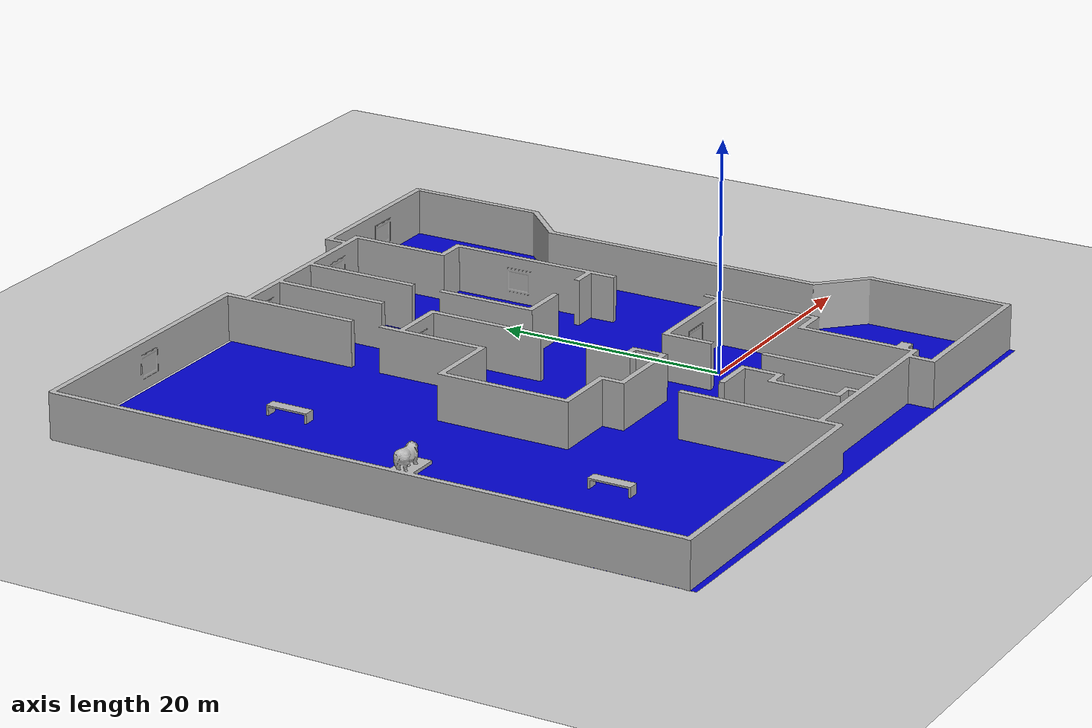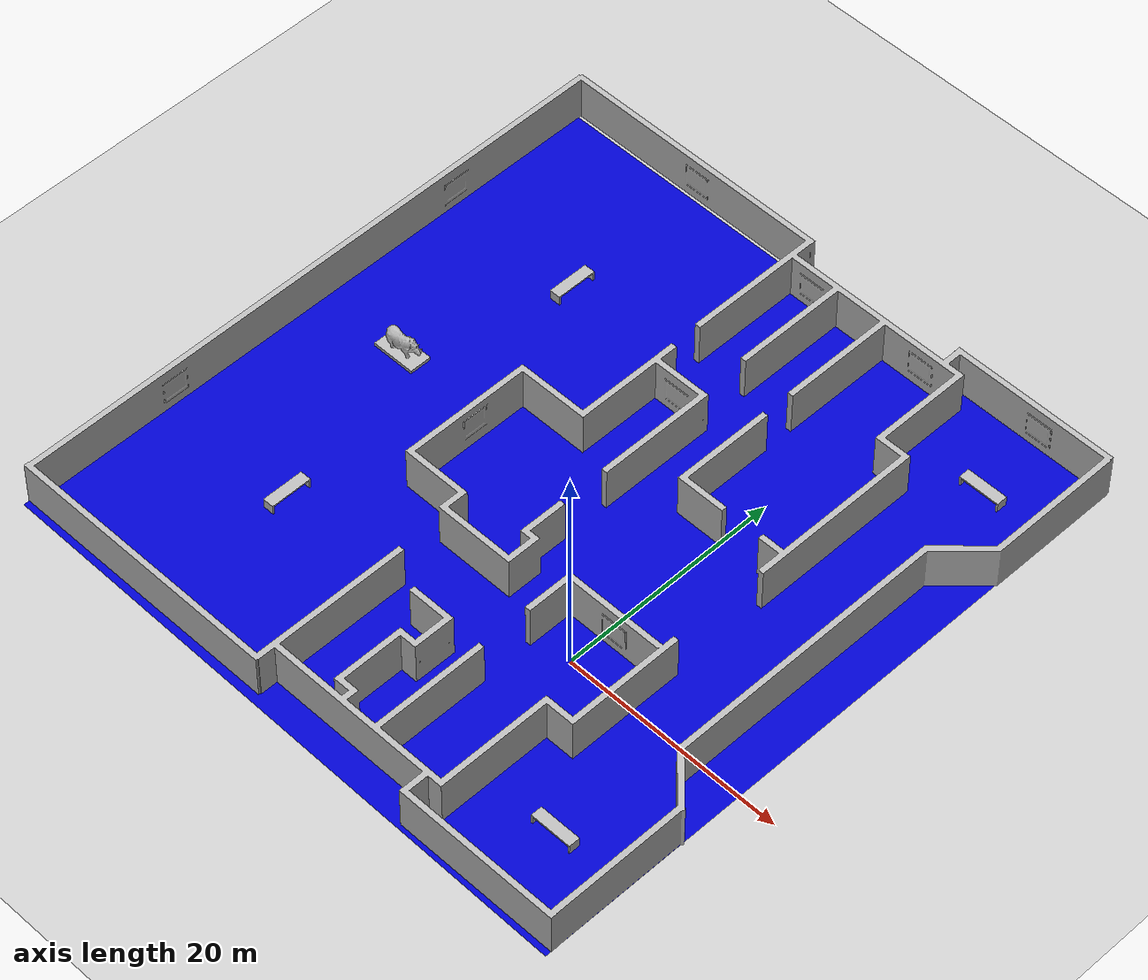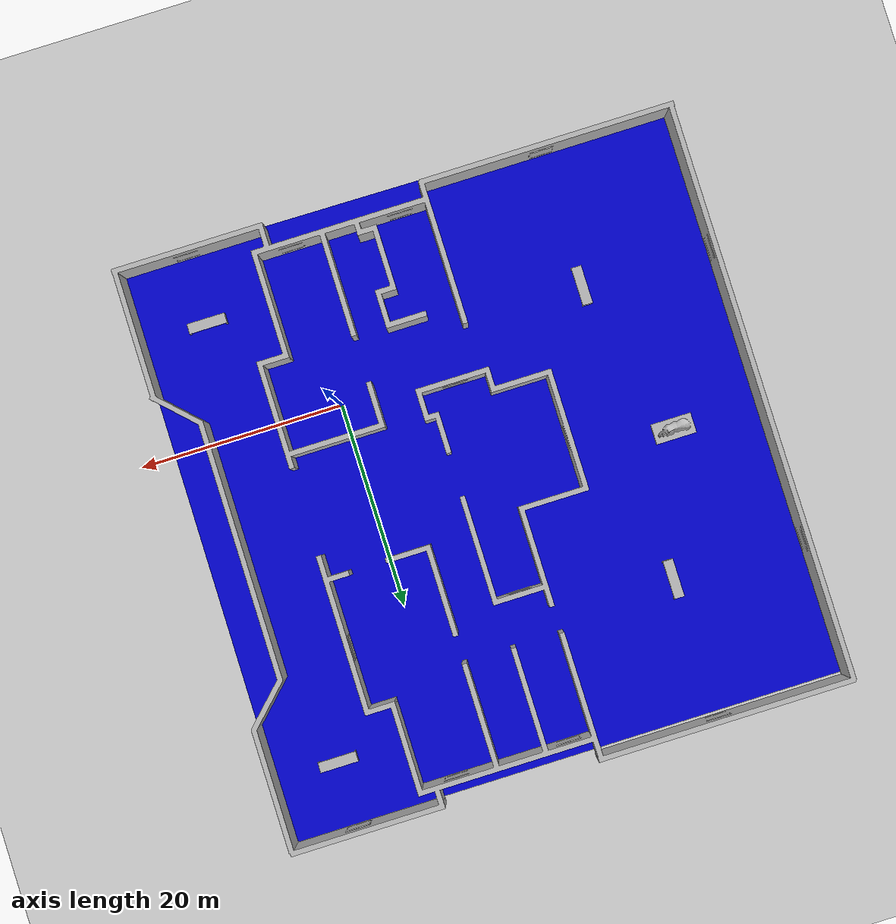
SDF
<?xml version='1.0' encoding='utf-8'?>
<sdf version="1.6">
  <world name="default">
    <gravity>0 0 -9.8</gravity>
    <physics default="0" name="default_physics" type="ode">
      <max_step_size>0.001</max_step_size>
      <real_time_factor>1.5</real_time_factor>
      <real_time_update_rate>1000</real_time_update_rate>
    </physics>
    <scene>
      <ambient>0.6 0.6 0.6 1</ambient>
      <background>0.4 0.4 0.4 1</background>
      <shadows>false</shadows>
    </scene>
    <light name="sun" type="directional">
      <cast_shadows>false</cast_shadows>
      <pose>0 0 10 0 0 0</pose>
      <diffuse>0.8 0.8 0.8 1</diffuse>
      <specular>0.2 0.2 0.2 1</specular>
      <attenuation>
        <range>1000</range>
        <constant>0.9</constant>
        <linear>0.01</linear>
        <quadratic>0.001</quadratic>
      </attenuation>
      <direction>-0.5 0.1 -0.9</direction>
    </light>
    <model name="ground_plane">
      <static>true</static>
      <pose>0 0 -0.1 0 -0 0</pose>
      <link name="link">
        <collision name="collision">
          <geometry><plane><normal>0 0 1</normal><size>100 100</size></plane></geometry>
        </collision>
        <visual name="visual">
          <geometry><plane><normal>0 0 1</normal><size>100 100</size></plane></geometry>
          <material>
            <ambient>0.8 0.8 0.8 1</ambient>
            <diffuse>0.8 0.8 0.8 1</diffuse>
            <specular>0.8 0.8 0.8 1</specular>
          </material>
        </visual>
      </link>
    </model>

    <plugin filename="gz-sim-physics-system" name="gz::sim::systems::Physics"/>
    <plugin filename="gz-sim-user-commands-system" name="gz::sim::systems::UserCommands"/>
    <plugin filename="gz-sim-scene-broadcaster-system" name="gz::sim::systems::SceneBroadcaster"/>
    <plugin filename="gz-sim-imu-system" name="gz::sim::systems::Imu"/>
    <plugin filename="gz-sim-sensors-system" name="gz::sim::systems::Sensors">
      <render_engine>ogre2</render_engine>
    </plugin>

    <model name="museum_floor">
      <include>
        <uri>model://museum_floor</uri>
        <static>true</static>
        <pose>-0.001425 -0.014447 0 0 -0 0</pose>
      </include>
    </model>

    <model name="museum">
      <include>
        <uri>model://museum</uri>
        <static>true</static>
        <pose>-0 0 0 0 -0 0</pose>
      </include>
    </model>

  </world>
</sdf>

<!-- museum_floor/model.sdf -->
<sdf version="1.6">
  <model name="aws_robomaker_hospital_floor_01_floor">
    <link name="link">
      <visual name="visual">
	    <geometry>
          <mesh>
            <uri>model://museum_floor/meshes/floor.dae</uri>
          </mesh>
        </geometry>
      </visual>
      <collision name="collision">
        <geometry>
          <mesh>
            <uri>model://museum_floor/meshes/floor.dae</uri>
          </mesh>
        </geometry>
        <surface>
          <friction>
            <ode>
              <mu>100</mu>
              <mu2>50</mu2>
            </ode>
          </friction>
        </surface>
      </collision>
</link>
  <static>1</static>
  </model>
</sdf>

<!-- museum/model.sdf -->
<sdf version='1.6'>
  <model name='museum'>
    <link name='link_36'>
      <pose frame=''>0 0.5 0 0 -0 0</pose>
       <visual name='visual'>
        <pose frame=''>0 0 0 0 -0 0</pose>
        <geometry>
          <mesh>
            <uri>model://museum/meshes/new_museum.dae</uri>
            <scale>1 1 1</scale>
          </mesh>
        </geometry>

        <cast_shadows>1</cast_shadows>
        <transparency>0</transparency>
      </visual>

    </link>
    <static>1</static>
    <allow_auto_disable>1</allow_auto_disable>
  </model>
</sdf>
